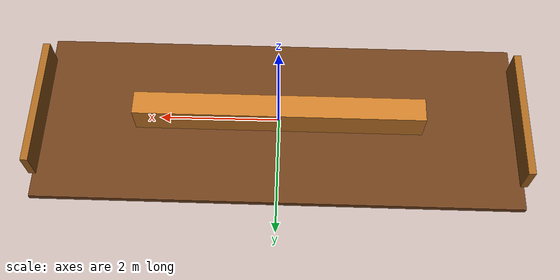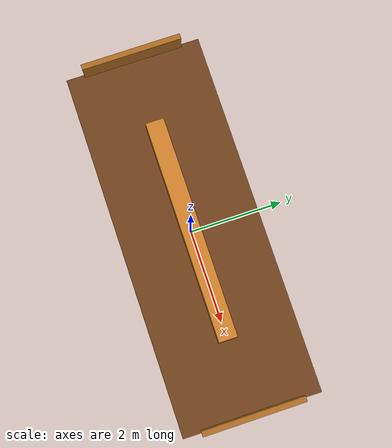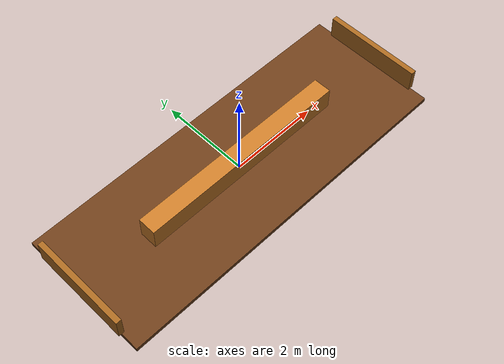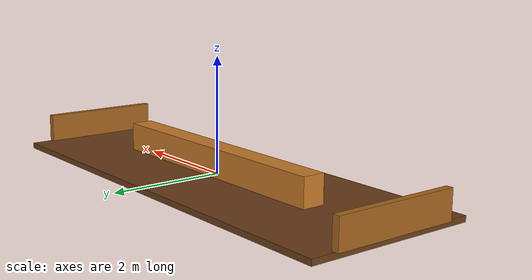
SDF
<?xml version="1.0"?>
<sdf version="1.6">
  <world name="spore_patrol_single_ridge_8m">
    <gravity>0 0 -9.8</gravity>
    <physics type="ode">
      <real_time_update_rate>1000</real_time_update_rate>
      <max_step_size>0.001</max_step_size>
    </physics>

    <include>
      <uri>model://sun</uri>
    </include>

    <!-- One 4.8 m ridge in an 8.0 m x 3.0 m working area. -->
    <model name="soil">
      <static>true</static>
      <pose>0 0 -0.05 0 0 0</pose>
      <link name="soil_link">
        <collision name="soil_collision">
          <geometry>
            <box><size>8.0 3.0 0.10</size></box>
          </geometry>
        </collision>
        <visual name="soil_visual">
          <geometry>
            <box><size>8.0 3.0 0.10</size></box>
          </geometry>
          <material>
            <ambient>0.30 0.17 0.08 1</ambient>
            <diffuse>0.42 0.24 0.10 1</diffuse>
          </material>
        </visual>
      </link>
    </model>

    <!-- Eight 0.60 m boxes are represented by one equivalent ridge volume. -->
    <model name="single_ridge">
      <static>true</static>
      <pose>0 0 0.25 0 0 0</pose>
      <link name="ridge">
        <collision name="collision">
          <geometry><box><size>4.80 0.40 0.50</size></box></geometry>
        </collision>
        <visual name="visual">
          <geometry><box><size>4.80 0.40 0.50</size></box></geometry>
          <material>
            <ambient>0.55 0.32 0.10 1</ambient>
            <diffuse>0.78 0.48 0.16 1</diffuse>
          </material>
        </visual>
      </link>
    </model>

    <!--
      Short cross-headland markers span both drive lanes. They make the 1.6 m
      headlands observable without adding continuous side walls.
    -->
    <model name="headland_marker_west">
      <static>true</static>
      <pose>-4.0 0 0.25 0 0 0</pose>
      <link name="marker">
        <collision name="collision">
            <geometry><box><size>0.12 2.20 0.50</size></box></geometry>
        </collision>
        <visual name="visual">
          <geometry><box><size>0.12 2.20 0.50</size></box></geometry>
          <material>
            <ambient>0.45 0.28 0.08 1</ambient>
            <diffuse>0.65 0.40 0.12 1</diffuse>
          </material>
        </visual>
      </link>
    </model>
    <model name="headland_marker_east">
      <static>true</static>
      <pose>4.0 0 0.25 0 0 0</pose>
      <link name="marker">
        <collision name="collision">
            <geometry><box><size>0.12 2.20 0.50</size></box></geometry>
        </collision>
        <visual name="visual">
          <geometry><box><size>0.12 2.20 0.50</size></box></geometry>
          <material>
            <ambient>0.45 0.28 0.08 1</ambient>
            <diffuse>0.65 0.40 0.12 1</diffuse>
          </material>
        </visual>
      </link>
    </model>

    <gui fullscreen="0">
      <camera name="overview">
        <pose>-6.5 -5.5 6.5 0 0.55 0.78</pose>
        <view_controller>orbit</view_controller>
      </camera>
    </gui>
  </world>
</sdf>
